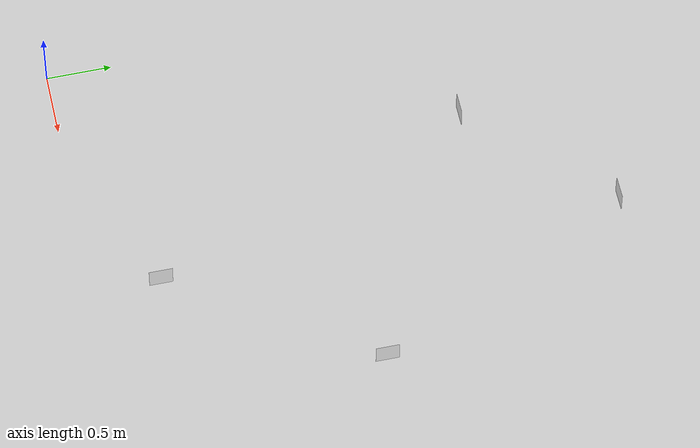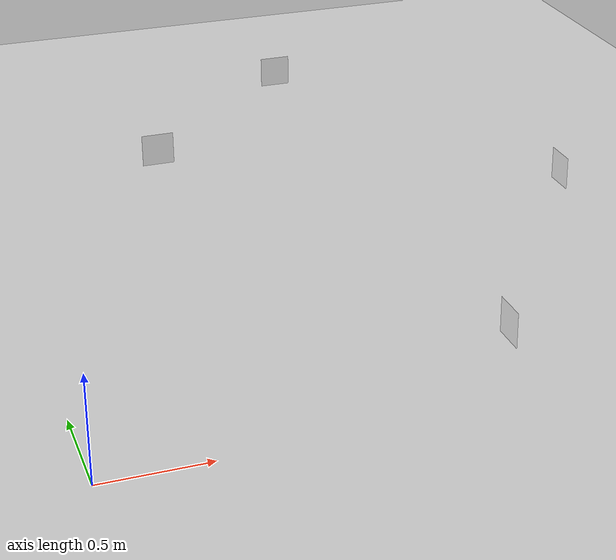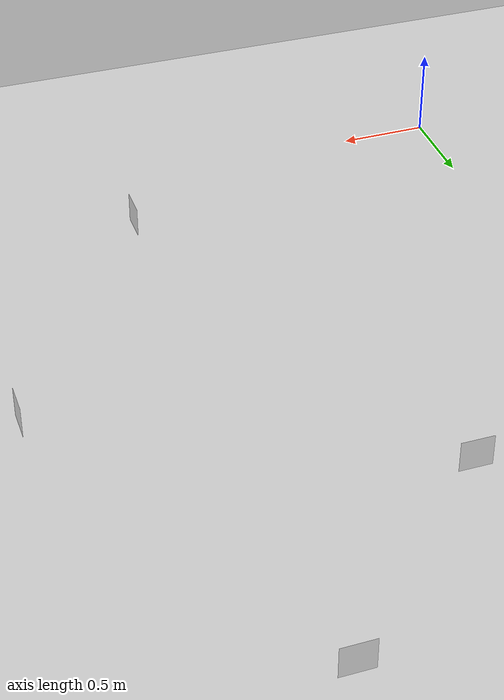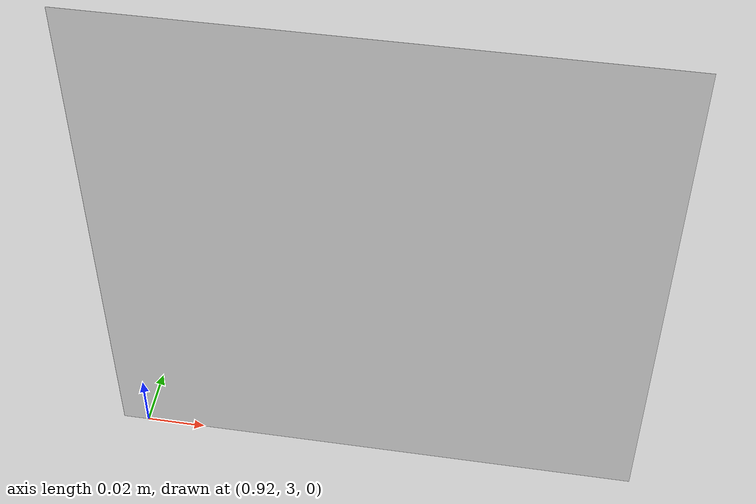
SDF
<sdf version="1.6">
 <world name="default">
  <scene><ambient>0.4 0.4 0.4 1</ambient><background>0.7 0.7 0.7 1</background><shadows>1</shadows></scene>
  <light name="sun" type="directional">
   <pose>0 0 10 0 -0 0</pose>
   <diffuse>0.8 0.8 0.8 1</diffuse>
   <specular>0.2 0.2 0.2 1</specular>
   <attenuation>
    <range>1000</range>
    <constant>0.9</constant>
    <linear>0.01</linear>
    <quadratic>0.001</quadratic>
   </attenuation>
   <direction>-0.5 0.1 -0.9</direction>
  </light>
  <model name="ground_plane">
   <static>1</static>
   <link name="link">
    <collision name="collision">
     <geometry><plane><normal>0 0 1</normal><size>100 100</size></plane></geometry>
     <surface><friction><ode><mu>100</mu><mu2>50</mu2></ode></friction></surface>
    </collision>
    <visual name="visual">
     <cast_shadows>0</cast_shadows>
     <geometry><plane><normal>0 0 1</normal><size>100 100</size></plane></geometry>
     <material>
      <script><uri>file://media/materials/scripts/gazebo.material</uri><name>Gazebo/Grey</name></script>
     </material>
    </visual>
   </link>
  </model>
  <physics name="default_physics" default="0" type="ode">
   <real_time_update_rate>1000</real_time_update_rate>
   <max_step_size>0.001</max_step_size>
   <real_time_factor>1</real_time_factor>
   <ode>
    <solver>
     <type>quick</type>
     <iters>150</iters>
     <precon_iters>0</precon_iters>
     <sor>1.4</sor>
     <use_dynamic_moi_rescaling>1</use_dynamic_moi_rescaling>
    </solver>
    <constraints>
     <cfm>1e-05</cfm>
     <erp>0.2</erp>
     <contact_max_correcting_vel>2000</contact_max_correcting_vel>
     <contact_surface_layer>0.01</contact_surface_layer>
    </constraints>
   </ode>
  </physics>
  <model name="aruco_visual_marker_1_ekf">
   <link name="marker">
    <pose>2 0.5 0.0889 3.14159 -1.57079 3.14159</pose>
    <visual name="visual">
     <geometry><box><size>0.1778 0.1778 1e-05</size></box></geometry>
     <material>
      <script>
       <uri>model://aruco_visual_marker_1/materials/scripts</uri>
       <uri>model://aruco_visual_marker_1/materials/textures</uri>
       <name>ArucoVisualMarker1/Marker</name>
      </script>
      <ambient>1 1 1 1</ambient>
      <diffuse>1 1 1 1</diffuse>
      <specular>0 0 0 1</specular>
      <emissive>1 1 1 0</emissive>
      <shader type="vertex"><normal_map>__default__</normal_map></shader>
     </material>
    </visual>
    <collision name="collision"><geometry><box><size>0.1778 0.1778 1e-05</size></box></geometry></collision>
   </link>
   <link name="marker_pad">
    <pose frame="marker">0 0 -1e-05 0 -0 0</pose>
    <visual name="visual">
     <geometry><box><size>0.1778 0.1778 1e-05</size></box></geometry>
     <material>
      <lighting>1</lighting>
      <script><uri>file://media/materials/scripts/gazebo.material</uri><name>Gazebo/White</name></script>
      <ambient>0.3 0.3 0.3 1</ambient>
      <diffuse>0.7 0.7 0.7 1</diffuse>
      <specular>0.01 0.01 0.01 1</specular>
      <emissive>1 1 1 0</emissive>
      <shader type="vertex"><normal_map>__default__</normal_map></shader>
     </material>
    </visual>
    <collision name="collision"><geometry><box><size>0.1778 0.1778 1e-05</size></box></geometry></collision>
   </link>
   <joint name="marker_JOINT_marker_pad" type="revolute">
    <parent>marker</parent>
    <child>marker_pad</child>
    <axis>
     <xyz>0 0 1</xyz>
     <limit><upper>0</upper><lower>0</lower></limit>
     <use_parent_model_frame>0</use_parent_model_frame>
     <dynamics><spring_reference>0</spring_reference><spring_stiffness>0</spring_stiffness></dynamics>
    </axis>
   </joint>
   <static>1</static>
  </model>
  <model name="aruco_visual_marker_2">
   <link name="marker">
    <pose>1 3 0.0889 -3.14159 -1.57079 -1.57079</pose>
    <visual name="visual">
     <geometry><box><size>0.1778 0.1778 1e-05</size></box></geometry>
     <material>
      <script>
       <uri>model://aruco_visual_marker_2/materials/scripts</uri>
       <uri>model://aruco_visual_marker_2/materials/textures</uri>
       <name>ArucoVisualMarker2/Marker</name>
      </script>
      <ambient>1 1 1 1</ambient>
      <diffuse>1 1 1 1</diffuse>
      <specular>0 0 0 1</specular>
      <emissive>1 1 1 0</emissive>
      <shader type="vertex"><normal_map>__default__</normal_map></shader>
     </material>
    </visual>
    <collision name="collision"><geometry><box><size>0.1778 0.1778 1e-05</size></box></geometry></collision>
   </link>
   <link name="marker_pad">
    <pose frame="marker">0 0 -1e-05 0 -0 0</pose>
    <visual name="visual">
     <geometry><box><size>0.1778 0.1778 1e-05</size></box></geometry>
     <material>
      <lighting>1</lighting>
      <script><uri>file://media/materials/scripts/gazebo.material</uri><name>Gazebo/White</name></script>
      <ambient>0.3 0.3 0.3 1</ambient>
      <diffuse>0.7 0.7 0.7 1</diffuse>
      <specular>0.01 0.01 0.01 1</specular>
      <emissive>1 1 1 0</emissive>
      <shader type="vertex"><normal_map>__default__</normal_map></shader>
     </material>
    </visual>
    <collision name="collision"><geometry><box><size>0.1778 0.1778 1e-05</size></box></geometry></collision>
   </link>
   <joint name="marker_JOINT_marker_pad" type="revolute">
    <parent>marker</parent>
    <child>marker_pad</child>
    <axis>
     <xyz>0 0 1</xyz>
     <limit><upper>0</upper><lower>0</lower></limit>
     <use_parent_model_frame>0</use_parent_model_frame>
     <dynamics><spring_reference>0</spring_reference><spring_stiffness>0</spring_stiffness></dynamics>
    </axis>
   </joint>
   <static>1</static>
  </model>
  <model name="aruco_visual_marker_3">
   <link name="marker">
    <pose>3 2 0.0889 3.14159 -1.57079 3.14159</pose>
    <visual name="visual">
     <geometry><box><size>0.1778 0.1778 1e-05</size></box></geometry>
     <material>
      <script>
       <uri>model://aruco_visual_marker_3/materials/scripts</uri>
       <uri>model://aruco_visual_marker_3/materials/textures</uri>
       <name>ArucoVisualMarker3/Marker</name>
      </script>
      <ambient>1 1 1 1</ambient>
      <diffuse>1 1 1 1</diffuse>
      <specular>0 0 0 1</specular>
      <emissive>1 1 1 0</emissive>
      <shader type="vertex"><normal_map>__default__</normal_map></shader>
     </material>
    </visual>
    <collision name="collision"><geometry><box><size>0.1778 0.1778 1e-05</size></box></geometry></collision>
   </link>
   <link name="marker_pad">
    <pose frame="marker">0 0 -1e-05 0 -0 0</pose>
    <visual name="visual">
     <geometry><box><size>0.1778 0.1778 1e-05</size></box></geometry>
     <material>
      <lighting>1</lighting>
      <script><uri>file://media/materials/scripts/gazebo.material</uri><name>Gazebo/White</name></script>
      <ambient>0.3 0.3 0.3 1</ambient>
      <diffuse>0.7 0.7 0.7 1</diffuse>
      <specular>0.01 0.01 0.01 1</specular>
      <emissive>1 1 1 0</emissive>
      <shader type="vertex"><normal_map>__default__</normal_map></shader>
     </material>
    </visual>
    <collision name="collision"><geometry><box><size>0.1778 0.1778 1e-05</size></box></geometry></collision>
   </link>
   <joint name="marker_JOINT_marker_pad" type="revolute">
    <parent>marker</parent>
    <child>marker_pad</child>
    <axis>
     <xyz>0 0 1</xyz>
     <limit><upper>0</upper><lower>0</lower></limit>
     <use_parent_model_frame>0</use_parent_model_frame>
     <dynamics><spring_reference>0</spring_reference><spring_stiffness>0</spring_stiffness></dynamics>
    </axis>
   </joint>
   <static>1</static>
  </model>
  <model name="aruco_visual_marker_4">
   <link name="marker">
    <pose>2 4 0.0889 -3.14159 -1.57079 -1.57079</pose>
    <visual name="visual">
     <geometry><box><size>0.1778 0.1778 1e-05</size></box></geometry>
     <material>
      <script>
       <uri>model://aruco_visual_marker_4/materials/scripts</uri>
       <uri>model://aruco_visual_marker_4/materials/textures</uri>
       <name>ArucoVisualMarker4/Marker</name>
      </script>
      <ambient>1 1 1 1</ambient>
      <diffuse>1 1 1 1</diffuse>
      <specular>0 0 0 1</specular>
      <emissive>1 1 1 0</emissive>
      <shader type="vertex"><normal_map>__default__</normal_map></shader>
     </material>
    </visual>
    <collision name="collision"><geometry><box><size>0.1778 0.1778 1e-05</size></box></geometry></collision>
   </link>
   <link name="marker_pad">
    <pose frame="marker">0 0 -1e-05 0 -0 0</pose>
    <visual name="visual">
     <geometry><box><size>0.1778 0.1778 1e-05</size></box></geometry>
     <material>
      <lighting>1</lighting>
      <script><uri>file://media/materials/scripts/gazebo.material</uri><name>Gazebo/White</name></script>
      <ambient>0.3 0.3 0.3 1</ambient>
      <diffuse>0.7 0.7 0.7 1</diffuse>
      <specular>0.01 0.01 0.01 1</specular>
      <emissive>1 1 1 0</emissive>
      <shader type="vertex"><normal_map>__default__</normal_map></shader>
     </material>
    </visual>
    <collision name="collision"><geometry><box><size>0.1778 0.1778 1e-05</size></box></geometry></collision>
   </link>
   <joint name="marker_JOINT_marker_pad" type="revolute">
    <parent>marker</parent>
    <child>marker_pad</child>
    <axis>
     <xyz>0 0 1</xyz>
     <limit><upper>0</upper><lower>0</lower></limit>
     <use_parent_model_frame>0</use_parent_model_frame>
     <dynamics><spring_reference>0</spring_reference><spring_stiffness>0</spring_stiffness></dynamics>
    </axis>
   </joint>
   <static>1</static>
  </model>
  <gravity>0 0 -9.8</gravity>
  <magnetic_field>6e-06 2.3e-05 -4.2e-05</magnetic_field>
  <atmosphere type="adiabatic"/>
  <spherical_coordinates>
   <surface_model>EARTH_WGS84</surface_model>
   <latitude_deg>0</latitude_deg>
   <longitude_deg>0</longitude_deg>
   <elevation>0</elevation>
   <heading_deg>0</heading_deg>
  </spherical_coordinates>
 </world>
</sdf>
